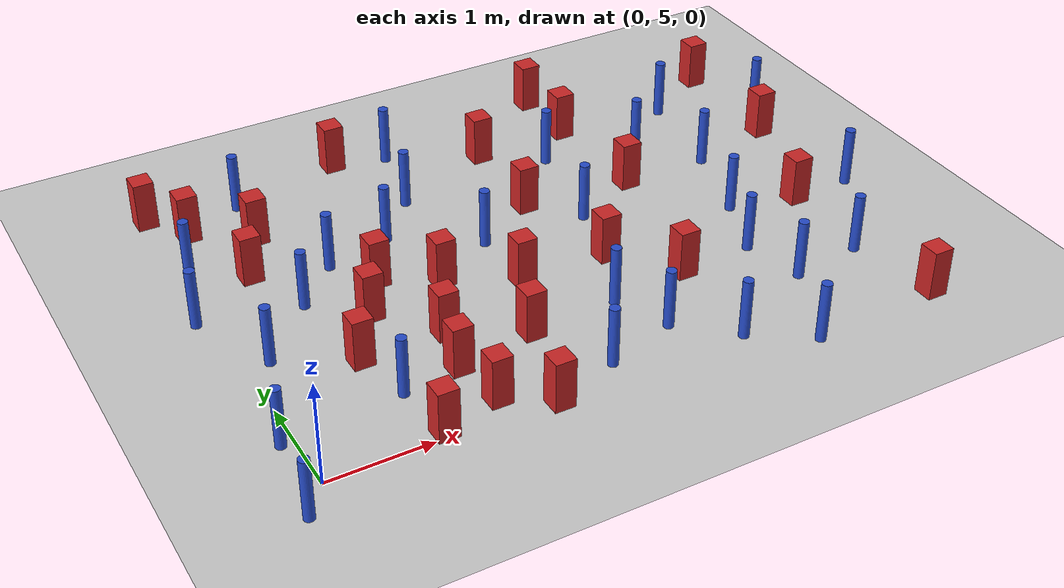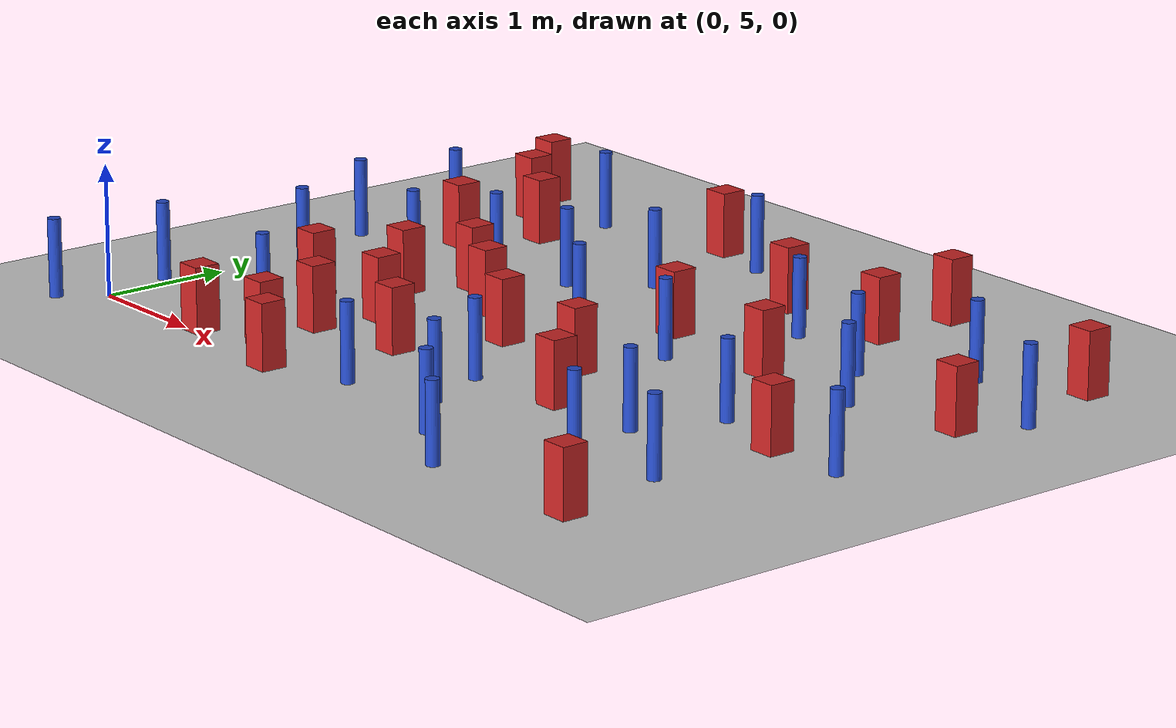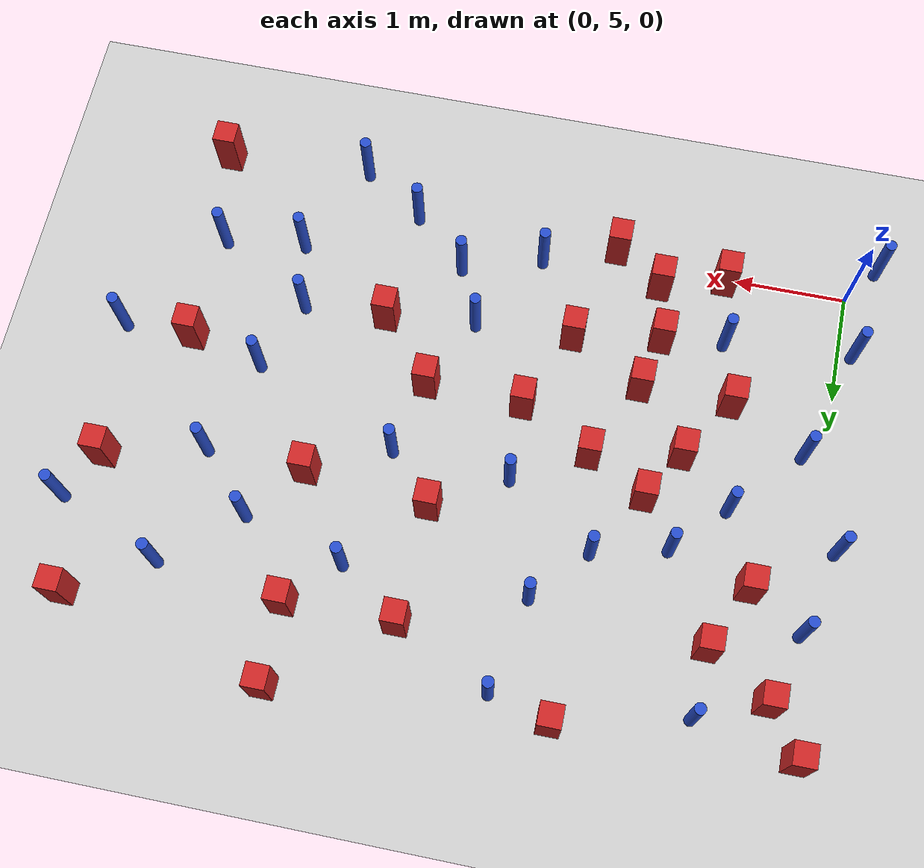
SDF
<sdf version="1.6">
 <world name="default">
  <model name="ground_plane">
   <static>1</static>
   <link name="link">
    <collision name="collision">
     <geometry><plane><normal>0 0 1</normal><size>100 100</size></plane></geometry>
     <surface><friction><ode><mu>100</mu><mu2>50</mu2></ode></friction></surface>
    </collision>
    <visual name="visual">
     <cast_shadows>0</cast_shadows>
     <geometry><plane><normal>0 0 1</normal><size>100 100</size></plane></geometry>
     <material>
      <ambient>1.0 1.0 1.0 1.0</ambient>
      <diffuse>0.8 0.8 0.8 1.0</diffuse>
      <specular>0.01 0.01 0.01 1.000000</specular>
     </material>
    </visual>
   </link>
  </model>
  <model name="square_post_obstacle9">
   <static>true</static>
   <pose>0.79812597293 8.42285894437 8.22691968438e-08 7.22125133819e-06 -7.54495500217e-07 2.29674213826e-05</pose>
   <link name="link">
    <pose>0 0 0.25 0 -0 0</pose>
    <inertial>
     <mass>100</mass>
     <inertia>
      <ixx>0.166667</ixx>
      <ixy>0</ixy>
      <ixz>0</ixz>
      <iyy>0.166667</iyy>
      <iyz>0</iyz>
      <izz>0.166667</izz>
     </inertia>
    </inertial>
    <collision name="collision"><geometry><box><size>.2 .2 .5</size></box></geometry></collision>
    <visual name="visual">
     <geometry><box><size>.2 .2 .5</size></box></geometry>
     <material>
      <script><name>Gazebo/Red</name><uri>file://media/materials/scripts/gazebo.material</uri></script>
     </material>
    </visual>
   </link>
  </model>
  <model name="square_post_obstacle10">
   <static>true</static>
   <pose>0.251058092384 8.77445879039 8.22691968438e-08 7.22125133819e-06 -7.54495500217e-07 2.29674213826e-05</pose>
   <link name="link">
    <pose>0 0 0.25 0 -0 0</pose>
    <inertial>
     <mass>100</mass>
     <inertia>
      <ixx>0.166667</ixx>
      <ixy>0</ixy>
      <ixz>0</ixz>
      <iyy>0.166667</iyy>
      <iyz>0</iyz>
      <izz>0.166667</izz>
     </inertia>
    </inertial>
    <collision name="collision"><geometry><box><size>.2 .2 .5</size></box></geometry></collision>
    <visual name="visual">
     <geometry><box><size>.2 .2 .5</size></box></geometry>
     <material>
      <script><name>Gazebo/Red</name><uri>file://media/materials/scripts/gazebo.material</uri></script>
     </material>
    </visual>
   </link>
  </model>
  <model name="pole_obstacle11">
   <static>true</static>
   <pose>-0.239215653327 4.69191095923 2.88873142074e-08 -9.90536689703e-09 4.60219948992e-07 -1.20965994959e-07</pose>
   <link name="link">
    <pose>0 0 0.3 0 -0 0</pose>
    <inertial>
     <mass>1</mass>
     <inertia><ixx>0.145833</ixx><ixy>0</ixy><ixz>0</ixz><iyy>0.145833</iyy><iyz>0</iyz><izz>0.125</izz></inertia>
    </inertial>
    <collision name="collision">
     <geometry><cylinder><radius>0.05</radius><length>.6</length></cylinder></geometry>
    </collision>
    <visual name="visual">
     <geometry><cylinder><radius>0.05</radius><length>.6</length></cylinder></geometry>
     <material>
      <script><name>Gazebo/Blue</name><uri>file://media/materials/scripts/gazebo.material</uri></script>
     </material>
    </visual>
   </link>
  </model>
  <model name="pole_obstacle16">
   <static>true</static>
   <pose>4.78969896694 6.04062823368 2.88873142074e-08 -9.90536690842e-09 4.60219948965e-07 -1.20965994976e-07</pose>
   <link name="link">
    <pose>0 0 0.3 0 -0 0</pose>
    <inertial>
     <mass>1</mass>
     <inertia><ixx>0.145833</ixx><ixy>0</ixy><ixz>0</ixz><iyy>0.145833</iyy><iyz>0</iyz><izz>0.125</izz></inertia>
    </inertial>
    <collision name="collision">
     <geometry><cylinder><radius>0.05</radius><length>.6</length></cylinder></geometry>
    </collision>
    <visual name="visual">
     <geometry><cylinder><radius>0.05</radius><length>.6</length></cylinder></geometry>
     <material>
      <script><name>Gazebo/Blue</name><uri>file://media/materials/scripts/gazebo.material</uri></script>
     </material>
    </visual>
   </link>
  </model>
  <model name="square_post_obstacle26">
   <static>true</static>
   <pose>1.24511180282 6.79903512277 8.22691968438e-08 7.2212513382e-06 -7.54495500217e-07 2.29674213826e-05</pose>
   <link name="link">
    <pose>0 0 0.25 0 -0 0</pose>
    <inertial>
     <mass>100</mass>
     <inertia>
      <ixx>0.166667</ixx>
      <ixy>0</ixy>
      <ixz>0</ixz>
      <iyy>0.166667</iyy>
      <iyz>0</iyz>
      <izz>0.166667</izz>
     </inertia>
    </inertial>
    <collision name="collision"><geometry><box><size>.2 .2 .5</size></box></geometry></collision>
    <visual name="visual">
     <geometry><box><size>.2 .2 .5</size></box></geometry>
     <material>
      <script><name>Gazebo/Red</name><uri>file://media/materials/scripts/gazebo.material</uri></script>
     </material>
    </visual>
   </link>
  </model>
  <model name="square_post_obstacle27">
   <static>true</static>
   <pose>3.29539763093 7.67737436555 8.22691968438e-08 7.2212513382e-06 -7.54495500217e-07 2.29674213826e-05</pose>
   <link name="link">
    <pose>0 0 0.25 0 -0 0</pose>
    <inertial>
     <mass>100</mass>
     <inertia>
      <ixx>0.166667</ixx>
      <ixy>0</ixy>
      <ixz>0</ixz>
      <iyy>0.166667</iyy>
      <iyz>0</iyz>
      <izz>0.166667</izz>
     </inertia>
    </inertial>
    <collision name="collision"><geometry><box><size>.2 .2 .5</size></box></geometry></collision>
    <visual name="visual">
     <geometry><box><size>.2 .2 .5</size></box></geometry>
     <material>
      <script><name>Gazebo/Red</name><uri>file://media/materials/scripts/gazebo.material</uri></script>
     </material>
    </visual>
   </link>
  </model>
  <model name="pole_obstacle35">
   <static>true</static>
   <pose>1.0268244853 5.6686285611 2.88873142074e-08 -9.90536689905e-09 4.60219948988e-07 -1.20965994961e-07</pose>
   <link name="link">
    <pose>0 0 0.3 0 -0 0</pose>
    <inertial>
     <mass>1</mass>
     <inertia><ixx>0.145833</ixx><ixy>0</ixy><ixz>0</ixz><iyy>0.145833</iyy><iyz>0</iyz><izz>0.125</izz></inertia>
    </inertial>
    <collision name="collision">
     <geometry><cylinder><radius>0.05</radius><length>.6</length></cylinder></geometry>
    </collision>
    <visual name="visual">
     <geometry><cylinder><radius>0.05</radius><length>.6</length></cylinder></geometry>
     <material>
      <script><name>Gazebo/Blue</name><uri>file://media/materials/scripts/gazebo.material</uri></script>
     </material>
    </visual>
   </link>
  </model>
  <model name="square_post_obstacle36">
   <static>true</static>
   <pose>5.83253383799 4.65883186071 8.22691968438e-08 7.2212513382e-06 -7.54495500217e-07 2.29674213826e-05</pose>
   <link name="link">
    <pose>0 0 0.25 0 -0 0</pose>
    <inertial>
     <mass>100</mass>
     <inertia>
      <ixx>0.166667</ixx>
      <ixy>0</ixy>
      <ixz>0</ixz>
      <iyy>0.166667</iyy>
      <iyz>0</iyz>
      <izz>0.166667</izz>
     </inertia>
    </inertial>
    <collision name="collision"><geometry><box><size>.2 .2 .5</size></box></geometry></collision>
    <visual name="visual">
     <geometry><box><size>.2 .2 .5</size></box></geometry>
     <material>
      <script><name>Gazebo/Red</name><uri>file://media/materials/scripts/gazebo.material</uri></script>
     </material>
    </visual>
   </link>
  </model>
  <model name="pole_obstacle39">
   <static>true</static>
   <pose>1.87355575034 7.8167545016 2.88873142074e-08 -9.90536689852e-09 4.60219948989e-07 -1.2096599496e-07</pose>
   <link name="link">
    <pose>0 0 0.3 0 -0 0</pose>
    <inertial>
     <mass>1</mass>
     <inertia><ixx>0.145833</ixx><ixy>0</ixy><ixz>0</ixz><iyy>0.145833</iyy><iyz>0</iyz><izz>0.125</izz></inertia>
    </inertial>
    <collision name="collision">
     <geometry><cylinder><radius>0.05</radius><length>.6</length></cylinder></geometry>
    </collision>
    <visual name="visual">
     <geometry><cylinder><radius>0.05</radius><length>.6</length></cylinder></geometry>
     <material>
      <script><name>Gazebo/Blue</name><uri>file://media/materials/scripts/gazebo.material</uri></script>
     </material>
    </visual>
   </link>
  </model>
  <model name="pole_obstacle43">
   <static>true</static>
   <pose>3.90342517259 8.32032028735 2.88873142074e-08 -9.90536692318e-09 4.6021994893e-07 -1.20965994988e-07</pose>
   <link name="link">
    <pose>0 0 0.3 0 -0 0</pose>
    <inertial>
     <mass>1</mass>
     <inertia><ixx>0.145833</ixx><ixy>0</ixy><ixz>0</ixz><iyy>0.145833</iyy><iyz>0</iyz><izz>0.125</izz></inertia>
    </inertial>
    <collision name="collision">
     <geometry><cylinder><radius>0.05</radius><length>.6</length></cylinder></geometry>
    </collision>
    <visual name="visual">
     <geometry><cylinder><radius>0.05</radius><length>.6</length></cylinder></geometry>
     <material>
      <script><name>Gazebo/Blue</name><uri>file://media/materials/scripts/gazebo.material</uri></script>
     </material>
    </visual>
   </link>
  </model>
  <model name="square_post_obstacle58">
   <static>true</static>
   <pose>5.69348520127 6.51935282081 8.22691968438e-08 7.2212513382e-06 -7.54495500217e-07 2.29674213826e-05</pose>
   <link name="link">
    <pose>0 0 0.25 0 -0 0</pose>
    <inertial>
     <mass>100</mass>
     <inertia>
      <ixx>0.166667</ixx>
      <ixy>0</ixy>
      <ixz>0</ixz>
      <iyy>0.166667</iyy>
      <iyz>0</iyz>
      <izz>0.166667</izz>
     </inertia>
    </inertial>
    <collision name="collision"><geometry><box><size>.2 .2 .5</size></box></geometry></collision>
    <visual name="visual">
     <geometry><box><size>.2 .2 .5</size></box></geometry>
     <material>
      <script><name>Gazebo/Red</name><uri>file://media/materials/scripts/gazebo.material</uri></script>
     </material>
    </visual>
   </link>
  </model>
  <model name="pole_obstacle57">
   <static>true</static>
   <pose>5.44840788923 8.59964569069 2.88873142074e-08 -9.9053668967e-09 4.60219948993e-07 -1.20965994957e-07</pose>
   <link name="link">
    <pose>0 0 0.3 0 -0 0</pose>
    <inertial>
     <mass>1</mass>
     <inertia><ixx>0.145833</ixx><ixy>0</ixy><ixz>0</ixz><iyy>0.145833</iyy><iyz>0</iyz><izz>0.125</izz></inertia>
    </inertial>
    <collision name="collision">
     <geometry><cylinder><radius>0.05</radius><length>.6</length></cylinder></geometry>
    </collision>
    <visual name="visual">
     <geometry><cylinder><radius>0.05</radius><length>.6</length></cylinder></geometry>
     <material>
      <script><name>Gazebo/Blue</name><uri>file://media/materials/scripts/gazebo.material</uri></script>
     </material>
    </visual>
   </link>
  </model>
  <model name="pole_obstacle61">
   <static>true</static>
   <pose>0.209707912908 6.60264224573 2.88873142074e-08 -9.90536689491e-09 4.60219948997e-07 -1.20965994955e-07</pose>
   <link name="link">
    <pose>0 0 0.3 0 -0 0</pose>
    <inertial>
     <mass>1</mass>
     <inertia><ixx>0.145833</ixx><ixy>0</ixy><ixz>0</ixz><iyy>0.145833</iyy><iyz>0</iyz><izz>0.125</izz></inertia>
    </inertial>
    <collision name="collision">
     <geometry><cylinder><radius>0.05</radius><length>.6</length></cylinder></geometry>
    </collision>
    <visual name="visual">
     <geometry><cylinder><radius>0.05</radius><length>.6</length></cylinder></geometry>
     <material>
      <script><name>Gazebo/Blue</name><uri>file://media/materials/scripts/gazebo.material</uri></script>
     </material>
    </visual>
   </link>
  </model>
  <model name="pole_obstacle62">
   <static>true</static>
   <pose>5.29012162261 7.54608454998 2.88873142074e-08 -9.90536690842e-09 4.60219948965e-07 -1.20965994976e-07</pose>
   <link name="link">
    <pose>0 0 0.3 0 -0 0</pose>
    <inertial>
     <mass>1</mass>
     <inertia><ixx>0.145833</ixx><ixy>0</ixy><ixz>0</ixz><iyy>0.145833</iyy><iyz>0</iyz><izz>0.125</izz></inertia>
    </inertial>
    <collision name="collision">
     <geometry><cylinder><radius>0.05</radius><length>.6</length></cylinder></geometry>
    </collision>
    <visual name="visual">
     <geometry><cylinder><radius>0.05</radius><length>.6</length></cylinder></geometry>
     <material>
      <script><name>Gazebo/Blue</name><uri>file://media/materials/scripts/gazebo.material</uri></script>
     </material>
    </visual>
   </link>
  </model>
  <model name="square_post_obstacle68">
   <static>true</static>
   <pose>3.3425456204 8.71548466484 8.22691968438e-08 7.22125133819e-06 -7.54495500217e-07 2.29674213826e-05</pose>
   <link name="link">
    <pose>0 0 0.25 0 -0 0</pose>
    <inertial>
     <mass>100</mass>
     <inertia>
      <ixx>0.166667</ixx>
      <ixy>0</ixy>
      <ixz>0</ixz>
      <iyy>0.166667</iyy>
      <iyz>0</iyz>
      <izz>0.166667</izz>
     </inertia>
    </inertial>
    <collision name="collision"><geometry><box><size>.2 .2 .5</size></box></geometry></collision>
    <visual name="visual">
     <geometry><box><size>.2 .2 .5</size></box></geometry>
     <material>
      <script><name>Gazebo/Red</name><uri>file://media/materials/scripts/gazebo.material</uri></script>
     </material>
    </visual>
   </link>
  </model>
  <model name="square_post_obstacle70">
   <static>true</static>
   <pose>2.03378178287 6.95299372518 8.22691968438e-08 7.22125133819e-06 -7.54495500217e-07 2.29674213826e-05</pose>
   <link name="link">
    <pose>0 0 0.25 0 -0 0</pose>
    <inertial>
     <mass>100</mass>
     <inertia>
      <ixx>0.166667</ixx>
      <ixy>0</ixy>
      <ixz>0</ixz>
      <iyy>0.166667</iyy>
      <iyz>0</iyz>
      <izz>0.166667</izz>
     </inertia>
    </inertial>
    <collision name="collision"><geometry><box><size>.2 .2 .5</size></box></geometry></collision>
    <visual name="visual">
     <geometry><box><size>.2 .2 .5</size></box></geometry>
     <material>
      <script><name>Gazebo/Red</name><uri>file://media/materials/scripts/gazebo.material</uri></script>
     </material>
    </visual>
   </link>
  </model>
  <model name="pole_obstacle68">
   <static>true</static>
   <pose>-0.163141914004 7.41308531739 2.88873142074e-08 -9.90536689816e-09 4.6021994899e-07 -1.20965994961e-07</pose>
   <link name="link">
    <pose>0 0 0.3 0 -0 0</pose>
    <inertial>
     <mass>1</mass>
     <inertia><ixx>0.145833</ixx><ixy>0</ixy><ixz>0</ixz><iyy>0.145833</iyy><iyz>0</iyz><izz>0.125</izz></inertia>
    </inertial>
    <collision name="collision">
     <geometry><cylinder><radius>0.05</radius><length>.6</length></cylinder></geometry>
    </collision>
    <visual name="visual">
     <geometry><cylinder><radius>0.05</radius><length>.6</length></cylinder></geometry>
     <material>
      <script><name>Gazebo/Blue</name><uri>file://media/materials/scripts/gazebo.material</uri></script>
     </material>
    </visual>
   </link>
  </model>
  <model name="pole_obstacle69">
   <static>true</static>
   <pose>0.83364002113 9.02285271849 2.88873142074e-08 -9.90536690779e-09 4.60219948967e-07 -1.20965994975e-07</pose>
   <link name="link">
    <pose>0 0 0.3 0 -0 0</pose>
    <inertial>
     <mass>1</mass>
     <inertia><ixx>0.145833</ixx><ixy>0</ixy><ixz>0</ixz><iyy>0.145833</iyy><iyz>0</iyz><izz>0.125</izz></inertia>
    </inertial>
    <collision name="collision">
     <geometry><cylinder><radius>0.05</radius><length>.6</length></cylinder></geometry>
    </collision>
    <visual name="visual">
     <geometry><cylinder><radius>0.05</radius><length>.6</length></cylinder></geometry>
     <material>
      <script><name>Gazebo/Blue</name><uri>file://media/materials/scripts/gazebo.material</uri></script>
     </material>
    </visual>
   </link>
  </model>
  <model name="pole_obstacle95">
   <static>true</static>
   <pose>2.30860232496 8.30001144588 2.88873142074e-08 -9.90536692318e-09 4.6021994893e-07 -1.20965994988e-07</pose>
   <link name="link">
    <pose>0 0 0.3 0 -0 0</pose>
    <inertial>
     <mass>1</mass>
     <inertia><ixx>0.145833</ixx><ixy>0</ixy><ixz>0</ixz><iyy>0.145833</iyy><iyz>0</iyz><izz>0.125</izz></inertia>
    </inertial>
    <collision name="collision">
     <geometry><cylinder><radius>0.05</radius><length>.6</length></cylinder></geometry>
    </collision>
    <visual name="visual">
     <geometry><cylinder><radius>0.05</radius><length>.6</length></cylinder></geometry>
     <material>
      <script><name>Gazebo/Blue</name><uri>file://media/materials/scripts/gazebo.material</uri></script>
     </material>
    </visual>
   </link>
  </model>
  <model name="pole_obstacle96">
   <static>true</static>
   <pose>4.81303296486 8.06237787654 2.88873142074e-08 -9.9053668967e-09 4.60219948993e-07 -1.20965994957e-07</pose>
   <link name="link">
    <pose>0 0 0.3 0 -0 0</pose>
    <inertial>
     <mass>1</mass>
     <inertia><ixx>0.145833</ixx><ixy>0</ixy><ixz>0</ixz><iyy>0.145833</iyy><iyz>0</iyz><izz>0.125</izz></inertia>
    </inertial>
    <collision name="collision">
     <geometry><cylinder><radius>0.05</radius><length>.6</length></cylinder></geometry>
    </collision>
    <visual name="visual">
     <geometry><cylinder><radius>0.05</radius><length>.6</length></cylinder></geometry>
     <material>
      <script><name>Gazebo/Blue</name><uri>file://media/materials/scripts/gazebo.material</uri></script>
     </material>
    </visual>
   </link>
  </model>
  <model name="square_post_obstacle86">
   <static>true</static>
   <pose>0.521981741621 7.85996087711 8.22691968438e-08 7.2212513382e-06 -7.54495500217e-07 2.29674213826e-05</pose>
   <link name="link">
    <pose>0 0 0.25 0 -0 0</pose>
    <inertial>
     <mass>100</mass>
     <inertia>
      <ixx>0.166667</ixx>
      <ixy>0</ixy>
      <ixz>0</ixz>
      <iyy>0.166667</iyy>
      <iyz>0</iyz>
      <izz>0.166667</izz>
     </inertia>
    </inertial>
    <collision name="collision"><geometry><box><size>.2 .2 .5</size></box></geometry></collision>
    <visual name="visual">
     <geometry><box><size>.2 .2 .5</size></box></geometry>
     <material>
      <script><name>Gazebo/Red</name><uri>file://media/materials/scripts/gazebo.material</uri></script>
     </material>
    </visual>
   </link>
  </model>
  <model name="pole_obstacle107">
   <static>true</static>
   <pose>3.70903686833 7.24186696153 2.88873142074e-08 -9.90536689859e-09 4.60219948989e-07 -1.20965994961e-07</pose>
   <link name="link">
    <pose>0 0 0.3 0 -0 0</pose>
    <inertial>
     <mass>1</mass>
     <inertia><ixx>0.145833</ixx><ixy>0</ixy><ixz>0</ixz><iyy>0.145833</iyy><iyz>0</iyz><izz>0.125</izz></inertia>
    </inertial>
    <collision name="collision">
     <geometry><cylinder><radius>0.05</radius><length>.6</length></cylinder></geometry>
    </collision>
    <visual name="visual">
     <geometry><cylinder><radius>0.05</radius><length>.6</length></cylinder></geometry>
     <material>
      <script><name>Gazebo/Blue</name><uri>file://media/materials/scripts/gazebo.material</uri></script>
     </material>
    </visual>
   </link>
  </model>
  <model name="pole_obstacle113">
   <static>true</static>
   <pose>-0.11661772274 5.56395635343 2.88873142074e-08 -9.90536689911e-09 4.60219948987e-07 -1.20965994962e-07</pose>
   <link name="link">
    <pose>0 0 0.3 0 -0 0</pose>
    <inertial>
     <mass>1</mass>
     <inertia><ixx>0.145833</ixx><ixy>0</ixy><ixz>0</ixz><iyy>0.145833</iyy><iyz>0</iyz><izz>0.125</izz></inertia>
    </inertial>
    <collision name="collision">
     <geometry><cylinder><radius>0.05</radius><length>.6</length></cylinder></geometry>
    </collision>
    <visual name="visual">
     <geometry><cylinder><radius>0.05</radius><length>.6</length></cylinder></geometry>
     <material>
      <script><name>Gazebo/Blue</name><uri>file://media/materials/scripts/gazebo.material</uri></script>
     </material>
    </visual>
   </link>
  </model>
  <model name="pole_obstacle115">
   <static>true</static>
   <pose>2.76299600901 5.16536318248 2.88873142074e-08 -9.90536689859e-09 4.60219948989e-07 -1.20965994961e-07</pose>
   <link name="link">
    <pose>0 0 0.3 0 -0 0</pose>
    <inertial>
     <mass>1</mass>
     <inertia><ixx>0.145833</ixx><ixy>0</ixy><ixz>0</ixz><iyy>0.145833</iyy><iyz>0</iyz><izz>0.125</izz></inertia>
    </inertial>
    <collision name="collision">
     <geometry><cylinder><radius>0.05</radius><length>.6</length></cylinder></geometry>
    </collision>
    <visual name="visual">
     <geometry><cylinder><radius>0.05</radius><length>.6</length></cylinder></geometry>
     <material>
      <script><name>Gazebo/Blue</name><uri>file://media/materials/scripts/gazebo.material</uri></script>
     </material>
    </visual>
   </link>
  </model>
  <model name="pole_obstacle116">
   <static>true</static>
   <pose>2.48748603758 9.14354563905 2.88873142074e-08 -9.90536692318e-09 4.6021994893e-07 -1.20965994988e-07</pose>
   <link name="link">
    <pose>0 0 0.3 0 -0 0</pose>
    <inertial>
     <mass>1</mass>
     <inertia><ixx>0.145833</ixx><ixy>0</ixy><ixz>0</ixz><iyy>0.145833</iyy><iyz>0</iyz><izz>0.125</izz></inertia>
    </inertial>
    <collision name="collision">
     <geometry><cylinder><radius>0.05</radius><length>.6</length></cylinder></geometry>
    </collision>
    <visual name="visual">
     <geometry><cylinder><radius>0.05</radius><length>.6</length></cylinder></geometry>
     <material>
      <script><name>Gazebo/Blue</name><uri>file://media/materials/scripts/gazebo.material</uri></script>
     </material>
    </visual>
   </link>
  </model>
  <model name="square_post_obstacle106">
   <static>true</static>
   <pose>1.95758309299 9.28133959343 8.22691968438e-08 7.22125133819e-06 -7.54495500217e-07 2.29674213826e-05</pose>
   <link name="link">
    <pose>0 0 0.25 0 -0 0</pose>
    <inertial>
     <mass>100</mass>
     <inertia>
      <ixx>0.166667</ixx>
      <ixy>0</ixy>
      <ixz>0</ixz>
      <iyy>0.166667</iyy>
      <iyz>0</iyz>
      <izz>0.166667</izz>
     </inertia>
    </inertial>
    <collision name="collision"><geometry><box><size>.2 .2 .5</size></box></geometry></collision>
    <visual name="visual">
     <geometry><box><size>.2 .2 .5</size></box></geometry>
     <material>
      <script><name>Gazebo/Red</name><uri>file://media/materials/scripts/gazebo.material</uri></script>
     </material>
    </visual>
   </link>
  </model>
  <model name="square_post_obstacle109">
   <static>true</static>
   <pose>1.50791520874 7.23883484397 8.22691968438e-08 7.2212513382e-06 -7.54495500217e-07 2.29674213826e-05</pose>
   <link name="link">
    <pose>0 0 0.25 0 -0 0</pose>
    <inertial>
     <mass>100</mass>
     <inertia>
      <ixx>0.166667</ixx>
      <ixy>0</ixy>
      <ixz>0</ixz>
      <iyy>0.166667</iyy>
      <iyz>0</iyz>
      <izz>0.166667</izz>
     </inertia>
    </inertial>
    <collision name="collision"><geometry><box><size>.2 .2 .5</size></box></geometry></collision>
    <visual name="visual">
     <geometry><box><size>.2 .2 .5</size></box></geometry>
     <material>
      <script><name>Gazebo/Red</name><uri>file://media/materials/scripts/gazebo.material</uri></script>
     </material>
    </visual>
   </link>
  </model>
  <model name="square_post_obstacle112">
   <static>true</static>
   <pose>6.15282921125 7.75479533746 8.22691968438e-08 7.2212513382e-06 -7.54495500217e-07 2.29674213826e-05</pose>
   <link name="link">
    <pose>0 0 0.25 0 -0 0</pose>
    <inertial>
     <mass>100</mass>
     <inertia>
      <ixx>0.166667</ixx>
      <ixy>0</ixy>
      <ixz>0</ixz>
      <iyy>0.166667</iyy>
      <iyz>0</iyz>
      <izz>0.166667</izz>
     </inertia>
    </inertial>
    <collision name="collision"><geometry><box><size>.2 .2 .5</size></box></geometry></collision>
    <visual name="visual">
     <geometry><box><size>.2 .2 .5</size></box></geometry>
     <material>
      <script><name>Gazebo/Red</name><uri>file://media/materials/scripts/gazebo.material</uri></script>
     </material>
    </visual>
   </link>
  </model>
  <model name="pole_obstacle127">
   <static>true</static>
   <pose>5.65480937162 5.53690778286 2.88873142074e-08 -9.90536690842e-09 4.60219948965e-07 -1.20965994976e-07</pose>
   <link name="link">
    <pose>0 0 0.3 0 -0 0</pose>
    <inertial>
     <mass>1</mass>
     <inertia><ixx>0.145833</ixx><ixy>0</ixy><ixz>0</ixz><iyy>0.145833</iyy><iyz>0</iyz><izz>0.125</izz></inertia>
    </inertial>
    <collision name="collision">
     <geometry><cylinder><radius>0.05</radius><length>.6</length></cylinder></geometry>
    </collision>
    <visual name="visual">
     <geometry><cylinder><radius>0.05</radius><length>.6</length></cylinder></geometry>
     <material>
      <script><name>Gazebo/Blue</name><uri>file://media/materials/scripts/gazebo.material</uri></script>
     </material>
    </visual>
   </link>
  </model>
  <model name="pole_obstacle134">
   <static>true</static>
   <pose>4.93724563345 5.44152983648 2.88873142074e-08 -9.90536690842e-09 4.60219948965e-07 -1.20965994976e-07</pose>
   <link name="link">
    <pose>0 0 0.3 0 -0 0</pose>
    <inertial>
     <mass>1</mass>
     <inertia><ixx>0.145833</ixx><ixy>0</ixy><ixz>0</ixz><iyy>0.145833</iyy><iyz>0</iyz><izz>0.125</izz></inertia>
    </inertial>
    <collision name="collision">
     <geometry><cylinder><radius>0.05</radius><length>.6</length></cylinder></geometry>
    </collision>
    <visual name="visual">
     <geometry><cylinder><radius>0.05</radius><length>.6</length></cylinder></geometry>
     <material>
      <script><name>Gazebo/Blue</name><uri>file://media/materials/scripts/gazebo.material</uri></script>
     </material>
    </visual>
   </link>
  </model>
  <model name="square_post_obstacle123">
   <static>true</static>
   <pose>4.3101409762 8.73049269429 8.22691968438e-08 7.22125133819e-06 -7.54495500217e-07 2.29674213826e-05</pose>
   <link name="link">
    <pose>0 0 0.25 0 -0 0</pose>
    <inertial>
     <mass>100</mass>
     <inertia>
      <ixx>0.166667</ixx>
      <ixy>0</ixy>
      <ixz>0</ixz>
      <iyy>0.166667</iyy>
      <iyz>0</iyz>
      <izz>0.166667</izz>
     </inertia>
    </inertial>
    <collision name="collision"><geometry><box><size>.2 .2 .5</size></box></geometry></collision>
    <visual name="visual">
     <geometry><box><size>.2 .2 .5</size></box></geometry>
     <material>
      <script><name>Gazebo/Red</name><uri>file://media/materials/scripts/gazebo.material</uri></script>
     </material>
    </visual>
   </link>
  </model>
  <model name="pole_obstacle140">
   <static>true</static>
   <pose>4.52779403499 4.57926630098 2.88873142074e-08 -9.90536690842e-09 4.60219948965e-07 -1.20965994976e-07</pose>
   <link name="link">
    <pose>0 0 0.3 0 -0 0</pose>
    <inertial>
     <mass>1</mass>
     <inertia><ixx>0.145833</ixx><ixy>0</ixy><ixz>0</ixz><iyy>0.145833</iyy><iyz>0</iyz><izz>0.125</izz></inertia>
    </inertial>
    <collision name="collision">
     <geometry><cylinder><radius>0.05</radius><length>.6</length></cylinder></geometry>
    </collision>
    <visual name="visual">
     <geometry><cylinder><radius>0.05</radius><length>.6</length></cylinder></geometry>
     <material>
      <script><name>Gazebo/Blue</name><uri>file://media/materials/scripts/gazebo.material</uri></script>
     </material>
    </visual>
   </link>
  </model>
  <model name="square_post_obstacle126">
   <static>true</static>
   <pose>3.54843229613 6.57551719626 8.22691968438e-08 7.2212513382e-06 -7.54495500217e-07 2.29674213826e-05</pose>
   <link name="link">
    <pose>0 0 0.25 0 -0 0</pose>
    <inertial>
     <mass>100</mass>
     <inertia>
      <ixx>0.166667</ixx>
      <ixy>0</ixy>
      <ixz>0</ixz>
      <iyy>0.166667</iyy>
      <iyz>0</iyz>
      <izz>0.166667</izz>
     </inertia>
    </inertial>
    <collision name="collision"><geometry><box><size>.2 .2 .5</size></box></geometry></collision>
    <visual name="visual">
     <geometry><box><size>.2 .2 .5</size></box></geometry>
     <material>
      <script><name>Gazebo/Red</name><uri>file://media/materials/scripts/gazebo.material</uri></script>
     </material>
    </visual>
   </link>
  </model>
  <model name="pole_obstacle142">
   <static>true</static>
   <pose>0.0445889074295 8.16920913541 2.88873142074e-08 -9.90536690996e-09 4.60219948962e-07 -1.20965994979e-07</pose>
   <link name="link">
    <pose>0 0 0.3 0 -0 0</pose>
    <inertial>
     <mass>1</mass>
     <inertia><ixx>0.145833</ixx><ixy>0</ixy><ixz>0</ixz><iyy>0.145833</iyy><iyz>0</iyz><izz>0.125</izz></inertia>
    </inertial>
    <collision name="collision">
     <geometry><cylinder><radius>0.05</radius><length>.6</length></cylinder></geometry>
    </collision>
    <visual name="visual">
     <geometry><cylinder><radius>0.05</radius><length>.6</length></cylinder></geometry>
     <material>
      <script><name>Gazebo/Blue</name><uri>file://media/materials/scripts/gazebo.material</uri></script>
     </material>
    </visual>
   </link>
  </model>
  <model name="square_post_obstacle130">
   <static>true</static>
   <pose>2.36157744031 5.87240471841 8.22691968438e-08 7.2212513382e-06 -7.54495500217e-07 2.29674213826e-05</pose>
   <link name="link">
    <pose>0 0 0.25 0 -0 0</pose>
    <inertial>
     <mass>100</mass>
     <inertia>
      <ixx>0.166667</ixx>
      <ixy>0</ixy>
      <ixz>0</ixz>
      <iyy>0.166667</iyy>
      <iyz>0</iyz>
      <izz>0.166667</izz>
     </inertia>
    </inertial>
    <collision name="collision"><geometry><box><size>.2 .2 .5</size></box></geometry></collision>
    <visual name="visual">
     <geometry><box><size>.2 .2 .5</size></box></geometry>
     <material>
      <script><name>Gazebo/Red</name><uri>file://media/materials/scripts/gazebo.material</uri></script>
     </material>
    </visual>
   </link>
  </model>
  <model name="pole_obstacle144">
   <static>true</static>
   <pose>3.96986511498 4.94523314222 2.88873142074e-08 -9.90536690327e-09 4.60219948978e-07 -1.20965994969e-07</pose>
   <link name="link">
    <pose>0 0 0.3 0 -0 0</pose>
    <inertial>
     <mass>1</mass>
     <inertia><ixx>0.145833</ixx><ixy>0</ixy><ixz>0</ixz><iyy>0.145833</iyy><iyz>0</iyz><izz>0.125</izz></inertia>
    </inertial>
    <collision name="collision">
     <geometry><cylinder><radius>0.05</radius><length>.6</length></cylinder></geometry>
    </collision>
    <visual name="visual">
     <geometry><cylinder><radius>0.05</radius><length>.6</length></cylinder></geometry>
     <material>
      <script><name>Gazebo/Blue</name><uri>file://media/materials/scripts/gazebo.material</uri></script>
     </material>
    </visual>
   </link>
  </model>
  <model name="square_post_obstacle134">
   <static>true</static>
   <pose>4.3945964964 7.56681731541 8.22691968438e-08 7.2212513382e-06 -7.54495500217e-07 2.29674213826e-05</pose>
   <link name="link">
    <pose>0 0 0.25 0 -0 0</pose>
    <inertial>
     <mass>100</mass>
     <inertia>
      <ixx>0.166667</ixx>
      <ixy>0</ixy>
      <ixz>0</ixz>
      <iyy>0.166667</iyy>
      <iyz>0</iyz>
      <izz>0.166667</izz>
     </inertia>
    </inertial>
    <collision name="collision"><geometry><box><size>.2 .2 .5</size></box></geometry></collision>
    <visual name="visual">
     <geometry><box><size>.2 .2 .5</size></box></geometry>
     <material>
      <script><name>Gazebo/Red</name><uri>file://media/materials/scripts/gazebo.material</uri></script>
     </material>
    </visual>
   </link>
  </model>
  <model name="square_post_obstacle145">
   <static>true</static>
   <pose>1.10294238836 5.06322199004 8.22691968438e-08 7.2212513382e-06 -7.54495500217e-07 2.29674213826e-05</pose>
   <link name="link">
    <pose>0 0 0.25 0 -0 0</pose>
    <inertial>
     <mass>100</mass>
     <inertia>
      <ixx>0.166667</ixx>
      <ixy>0</ixy>
      <ixz>0</ixz>
      <iyy>0.166667</iyy>
      <iyz>0</iyz>
      <izz>0.166667</izz>
     </inertia>
    </inertial>
    <collision name="collision"><geometry><box><size>.2 .2 .5</size></box></geometry></collision>
    <visual name="visual">
     <geometry><box><size>.2 .2 .5</size></box></geometry>
     <material>
      <script><name>Gazebo/Red</name><uri>file://media/materials/scripts/gazebo.material</uri></script>
     </material>
    </visual>
   </link>
  </model>
  <model name="square_post_obstacle150">
   <static>true</static>
   <pose>2.68121587296 6.60691699959 8.22691968438e-08 7.2212513382e-06 -7.54495500217e-07 2.29674213826e-05</pose>
   <link name="link">
    <pose>0 0 0.25 0 -0 0</pose>
    <inertial>
     <mass>100</mass>
     <inertia>
      <ixx>0.166667</ixx>
      <ixy>0</ixy>
      <ixz>0</ixz>
      <iyy>0.166667</iyy>
      <iyz>0</iyz>
      <izz>0.166667</izz>
     </inertia>
    </inertial>
    <collision name="collision"><geometry><box><size>.2 .2 .5</size></box></geometry></collision>
    <visual name="visual">
     <geometry><box><size>.2 .2 .5</size></box></geometry>
     <material>
      <script><name>Gazebo/Red</name><uri>file://media/materials/scripts/gazebo.material</uri></script>
     </material>
    </visual>
   </link>
  </model>
  <model name="square_post_obstacle153">
   <static>true</static>
   <pose>2.10605689562 4.93554310433 8.22691968438e-08 7.2212513382e-06 -7.54495500217e-07 2.29674213826e-05</pose>
   <link name="link">
    <pose>0 0 0.25 0 -0 0</pose>
    <inertial>
     <mass>100</mass>
     <inertia>
      <ixx>0.166667</ixx>
      <ixy>0</ixy>
      <ixz>0</ixz>
      <iyy>0.166667</iyy>
      <iyz>0</iyz>
      <izz>0.166667</izz>
     </inertia>
    </inertial>
    <collision name="collision"><geometry><box><size>.2 .2 .5</size></box></geometry></collision>
    <visual name="visual">
     <geometry><box><size>.2 .2 .5</size></box></geometry>
     <material>
      <script><name>Gazebo/Red</name><uri>file://media/materials/scripts/gazebo.material</uri></script>
     </material>
    </visual>
   </link>
  </model>
  <model name="pole_obstacle162">
   <static>true</static>
   <pose>3.24185147851 5.91411256186 2.88873142074e-08 -9.90536689859e-09 4.60219948989e-07 -1.20965994961e-07</pose>
   <link name="link">
    <pose>0 0 0.3 0 -0 0</pose>
    <inertial>
     <mass>1</mass>
     <inertia><ixx>0.145833</ixx><ixy>0</ixy><ixz>0</ixz><iyy>0.145833</iyy><iyz>0</iyz><izz>0.125</izz></inertia>
    </inertial>
    <collision name="collision">
     <geometry><cylinder><radius>0.05</radius><length>.6</length></cylinder></geometry>
    </collision>
    <visual name="visual">
     <geometry><cylinder><radius>0.05</radius><length>.6</length></cylinder></geometry>
     <material>
      <script><name>Gazebo/Blue</name><uri>file://media/materials/scripts/gazebo.material</uri></script>
     </material>
    </visual>
   </link>
  </model>
  <model name="square_post_obstacle155">
   <static>true</static>
   <pose>4.03562044627 6.00348392498 8.22691968438e-08 7.2212513382e-06 -7.54495500217e-07 2.29674213826e-05</pose>
   <link name="link">
    <pose>0 0 0.25 0 -0 0</pose>
    <inertial>
     <mass>100</mass>
     <inertia>
      <ixx>0.166667</ixx>
      <ixy>0</ixy>
      <ixz>0</ixz>
      <iyy>0.166667</iyy>
      <iyz>0</iyz>
      <izz>0.166667</izz>
     </inertia>
    </inertial>
    <collision name="collision"><geometry><box><size>.2 .2 .5</size></box></geometry></collision>
    <visual name="visual">
     <geometry><box><size>.2 .2 .5</size></box></geometry>
     <material>
      <script><name>Gazebo/Red</name><uri>file://media/materials/scripts/gazebo.material</uri></script>
     </material>
    </visual>
   </link>
  </model>
  <model name="square_post_obstacle159">
   <static>true</static>
   <pose>-0.0302961348614 9.19188765808 8.22691968438e-08 7.22125133819e-06 -7.54495500217e-07 2.29674213826e-05</pose>
   <link name="link">
    <pose>0 0 0.25 0 -0 0</pose>
    <inertial>
     <mass>100</mass>
     <inertia>
      <ixx>0.166667</ixx>
      <ixy>0</ixy>
      <ixz>0</ixz>
      <iyy>0.166667</iyy>
      <iyz>0</iyz>
      <izz>0.166667</izz>
     </inertia>
    </inertial>
    <collision name="collision"><geometry><box><size>.2 .2 .5</size></box></geometry></collision>
    <visual name="visual">
     <geometry><box><size>.2 .2 .5</size></box></geometry>
     <material>
      <script><name>Gazebo/Red</name><uri>file://media/materials/scripts/gazebo.material</uri></script>
     </material>
    </visual>
   </link>
  </model>
  <model name="pole_obstacle173">
   <static>true</static>
   <pose>5.03957173618 6.68273426607 2.88873142074e-08 -9.90536690842e-09 4.60219948965e-07 -1.20965994976e-07</pose>
   <link name="link">
    <pose>0 0 0.3 0 -0 0</pose>
    <inertial>
     <mass>1</mass>
     <inertia><ixx>0.145833</ixx><ixy>0</ixy><ixz>0</ixz><iyy>0.145833</iyy><iyz>0</iyz><izz>0.125</izz></inertia>
    </inertial>
    <collision name="collision">
     <geometry><cylinder><radius>0.05</radius><length>.6</length></cylinder></geometry>
    </collision>
    <visual name="visual">
     <geometry><cylinder><radius>0.05</radius><length>.6</length></cylinder></geometry>
     <material>
      <script><name>Gazebo/Blue</name><uri>file://media/materials/scripts/gazebo.material</uri></script>
     </material>
    </visual>
   </link>
  </model>
  <model name="square_post_obstacle165">
   <static>true</static>
   <pose>1.58416588909 5.74290734694 8.22691968438e-08 7.2212513382e-06 -7.54495500217e-07 2.29674213826e-05</pose>
   <link name="link">
    <pose>0 0 0.25 0 -0 0</pose>
    <inertial>
     <mass>100</mass>
     <inertia>
      <ixx>0.166667</ixx>
      <ixy>0</ixy>
      <ixz>0</ixz>
      <iyy>0.166667</iyy>
      <iyz>0</iyz>
      <izz>0.166667</izz>
     </inertia>
    </inertial>
    <collision name="collision"><geometry><box><size>.2 .2 .5</size></box></geometry></collision>
    <visual name="visual">
     <geometry><box><size>.2 .2 .5</size></box></geometry>
     <material>
      <script><name>Gazebo/Red</name><uri>file://media/materials/scripts/gazebo.material</uri></script>
     </material>
    </visual>
   </link>
  </model>
  <model name="pole_obstacle177">
   <static>true</static>
   <pose>2.66224216586 7.3030646037 2.88873142074e-08 -9.90536689859e-09 4.60219948989e-07 -1.20965994961e-07</pose>
   <link name="link">
    <pose>0 0 0.3 0 -0 0</pose>
    <inertial>
     <mass>1</mass>
     <inertia><ixx>0.145833</ixx><ixy>0</ixy><ixz>0</ixz><iyy>0.145833</iyy><iyz>0</iyz><izz>0.125</izz></inertia>
    </inertial>
    <collision name="collision">
     <geometry><cylinder><radius>0.05</radius><length>.6</length></cylinder></geometry>
    </collision>
    <visual name="visual">
     <geometry><cylinder><radius>0.05</radius><length>.6</length></cylinder></geometry>
     <material>
      <script><name>Gazebo/Blue</name><uri>file://media/materials/scripts/gazebo.material</uri></script>
     </material>
    </visual>
   </link>
  </model>
  <model name="square_post_obstacle168">
   <static>true</static>
   <pose>6.14436391738 9.00058593976 8.22691968438e-08 7.22125133819e-06 -7.54495500217e-07 2.29674213826e-05</pose>
   <link name="link">
    <pose>0 0 0.25 0 -0 0</pose>
    <inertial>
     <mass>100</mass>
     <inertia>
      <ixx>0.166667</ixx>
      <ixy>0</ixy>
      <ixz>0</ixz>
      <iyy>0.166667</iyy>
      <iyz>0</iyz>
      <izz>0.166667</izz>
     </inertia>
    </inertial>
    <collision name="collision"><geometry><box><size>.2 .2 .5</size></box></geometry></collision>
    <visual name="visual">
     <geometry><box><size>.2 .2 .5</size></box></geometry>
     <material>
      <script><name>Gazebo/Red</name><uri>file://media/materials/scripts/gazebo.material</uri></script>
     </material>
    </visual>
   </link>
  </model>
  <model name="pole_obstacle189">
   <static>true</static>
   <pose>3.47447995028 5.38717533635 2.88873142074e-08 -9.90536689859e-09 4.60219948989e-07 -1.20965994961e-07</pose>
   <link name="link">
    <pose>0 0 0.3 0 -0 0</pose>
    <inertial>
     <mass>1</mass>
     <inertia><ixx>0.145833</ixx><ixy>0</ixy><ixz>0</ixz><iyy>0.145833</iyy><iyz>0</iyz><izz>0.125</izz></inertia>
    </inertial>
    <collision name="collision">
     <geometry><cylinder><radius>0.05</radius><length>.6</length></cylinder></geometry>
    </collision>
    <visual name="visual">
     <geometry><cylinder><radius>0.05</radius><length>.6</length></cylinder></geometry>
     <material>
      <script><name>Gazebo/Blue</name><uri>file://media/materials/scripts/gazebo.material</uri></script>
     </material>
    </visual>
   </link>
  </model>
  <model name="square_post_obstacle186">
   <static>true</static>
   <pose>4.30095161643 9.43975699662 8.22691968438e-08 7.22125133819e-06 -7.54495500217e-07 2.29674213826e-05</pose>
   <link name="link">
    <pose>0 0 0.25 0 -0 0</pose>
    <inertial>
     <mass>100</mass>
     <inertia>
      <ixx>0.166667</ixx>
      <ixy>0</ixy>
      <ixz>0</ixz>
      <iyy>0.166667</iyy>
      <iyz>0</iyz>
      <izz>0.166667</izz>
     </inertia>
    </inertial>
    <collision name="collision"><geometry><box><size>.2 .2 .5</size></box></geometry></collision>
    <visual name="visual">
     <geometry><box><size>.2 .2 .5</size></box></geometry>
     <material>
      <script><name>Gazebo/Red</name><uri>file://media/materials/scripts/gazebo.material</uri></script>
     </material>
    </visual>
   </link>
  </model>
  <model name="square_post_obstacle188">
   <static>true</static>
   <pose>1.67571700108 5.22234662054 8.22691968438e-08 7.2212513382e-06 -7.54495500217e-07 2.29674213826e-05</pose>
   <link name="link">
    <pose>0 0 0.25 0 -0 0</pose>
    <inertial>
     <mass>100</mass>
     <inertia>
      <ixx>0.166667</ixx>
      <ixy>0</ixy>
      <ixz>0</ixz>
      <iyy>0.166667</iyy>
      <iyz>0</iyz>
      <izz>0.166667</izz>
     </inertia>
    </inertial>
    <collision name="collision"><geometry><box><size>.2 .2 .5</size></box></geometry></collision>
    <visual name="visual">
     <geometry><box><size>.2 .2 .5</size></box></geometry>
     <material>
      <script><name>Gazebo/Red</name><uri>file://media/materials/scripts/gazebo.material</uri></script>
     </material>
    </visual>
   </link>
  </model>
  <model name="pole_obstacle194">
   <static>true</static>
   <pose>0.783484106754 7.2129929707 2.88873142074e-08 -9.90536689661e-09 4.60219948993e-07 -1.20965994957e-07</pose>
   <link name="link">
    <pose>0 0 0.3 0 -0 0</pose>
    <inertial>
     <mass>1</mass>
     <inertia><ixx>0.145833</ixx><ixy>0</ixy><ixz>0</ixz><iyy>0.145833</iyy><iyz>0</iyz><izz>0.125</izz></inertia>
    </inertial>
    <collision name="collision">
     <geometry><cylinder><radius>0.05</radius><length>.6</length></cylinder></geometry>
    </collision>
    <visual name="visual">
     <geometry><cylinder><radius>0.05</radius><length>.6</length></cylinder></geometry>
     <material>
      <script><name>Gazebo/Blue</name><uri>file://media/materials/scripts/gazebo.material</uri></script>
     </material>
    </visual>
   </link>
  </model>
  <model name="square_post_obstacle201">
   <static>true</static>
   <pose>1.69915170645 6.23921445613 8.22691968438e-08 7.2212513382e-06 -7.54495500217e-07 2.29674213826e-05</pose>
   <link name="link">
    <pose>0 0 0.25 0 -0 0</pose>
    <inertial>
     <mass>100</mass>
     <inertia>
      <ixx>0.166667</ixx>
      <ixy>0</ixy>
      <ixz>0</ixz>
      <iyy>0.166667</iyy>
      <iyz>0</iyz>
      <izz>0.166667</izz>
     </inertia>
    </inertial>
    <collision name="collision"><geometry><box><size>.2 .2 .5</size></box></geometry></collision>
    <visual name="visual">
     <geometry><box><size>.2 .2 .5</size></box></geometry>
     <material>
      <script><name>Gazebo/Red</name><uri>file://media/materials/scripts/gazebo.material</uri></script>
     </material>
    </visual>
   </link>
  </model>
  <model name="pole_obstacle206">
   <static>true</static>
   <pose>6.32470409766 6.52632118795 2.88873142074e-08 -9.90536690842e-09 4.60219948965e-07 -1.20965994976e-07</pose>
   <link name="link">
    <pose>0 0 0.3 0 -0 0</pose>
    <inertial>
     <mass>1</mass>
     <inertia><ixx>0.145833</ixx><ixy>0</ixy><ixz>0</ixz><iyy>0.145833</iyy><iyz>0</iyz><izz>0.125</izz></inertia>
    </inertial>
    <collision name="collision">
     <geometry><cylinder><radius>0.05</radius><length>.6</length></cylinder></geometry>
    </collision>
    <visual name="visual">
     <geometry><cylinder><radius>0.05</radius><length>.6</length></cylinder></geometry>
     <material>
      <script><name>Gazebo/Blue</name><uri>file://media/materials/scripts/gazebo.material</uri></script>
     </material>
    </visual>
   </link>
  </model>
  <model name="pole_obstacle222">
   <static>true</static>
   <pose>6.39794013085 8.19175683812 2.88873142074e-08 -9.9053668967e-09 4.60219948993e-07 -1.20965994957e-07</pose>
   <link name="link">
    <pose>0 0 0.3 0 -0 0</pose>
    <inertial>
     <mass>1</mass>
     <inertia><ixx>0.145833</ixx><ixy>0</ixy><ixz>0</ixz><iyy>0.145833</iyy><iyz>0</iyz><izz>0.125</izz></inertia>
    </inertial>
    <collision name="collision">
     <geometry><cylinder><radius>0.05</radius><length>.6</length></cylinder></geometry>
    </collision>
    <visual name="visual">
     <geometry><cylinder><radius>0.05</radius><length>.6</length></cylinder></geometry>
     <material>
      <script><name>Gazebo/Blue</name><uri>file://media/materials/scripts/gazebo.material</uri></script>
     </material>
    </visual>
   </link>
  </model>
  <model name="pole_obstacle227">
   <static>true</static>
   <pose>1.22139825083 7.65857203095 2.88873142074e-08 -9.90536689852e-09 4.60219948989e-07 -1.2096599496e-07</pose>
   <link name="link">
    <pose>0 0 0.3 0 -0 0</pose>
    <inertial>
     <mass>1</mass>
     <inertia><ixx>0.145833</ixx><ixy>0</ixy><ixz>0</ixz><iyy>0.145833</iyy><iyz>0</iyz><izz>0.125</izz></inertia>
    </inertial>
    <collision name="collision">
     <geometry><cylinder><radius>0.05</radius><length>.6</length></cylinder></geometry>
    </collision>
    <visual name="visual">
     <geometry><cylinder><radius>0.05</radius><length>.6</length></cylinder></geometry>
     <material>
      <script><name>Gazebo/Blue</name><uri>file://media/materials/scripts/gazebo.material</uri></script>
     </material>
    </visual>
   </link>
  </model>
  <model name="square_post_obstacle214">
   <static>true</static>
   <pose>0.893346032622 6.23955996466 8.22691968438e-08 7.22125133819e-06 -7.54495500217e-07 2.29674213826e-05</pose>
   <link name="link">
    <pose>0 0 0.25 0 -0 0</pose>
    <inertial>
     <mass>100</mass>
     <inertia>
      <ixx>0.166667</ixx>
      <ixy>0</ixy>
      <ixz>0</ixz>
      <iyy>0.166667</iyy>
      <iyz>0</iyz>
      <izz>0.166667</izz>
     </inertia>
    </inertial>
    <collision name="collision"><geometry><box><size>.2 .2 .5</size></box></geometry></collision>
    <visual name="visual">
     <geometry><box><size>.2 .2 .5</size></box></geometry>
     <material>
      <script><name>Gazebo/Red</name><uri>file://media/materials/scripts/gazebo.material</uri></script>
     </material>
    </visual>
   </link>
  </model>
 </world>
</sdf>
